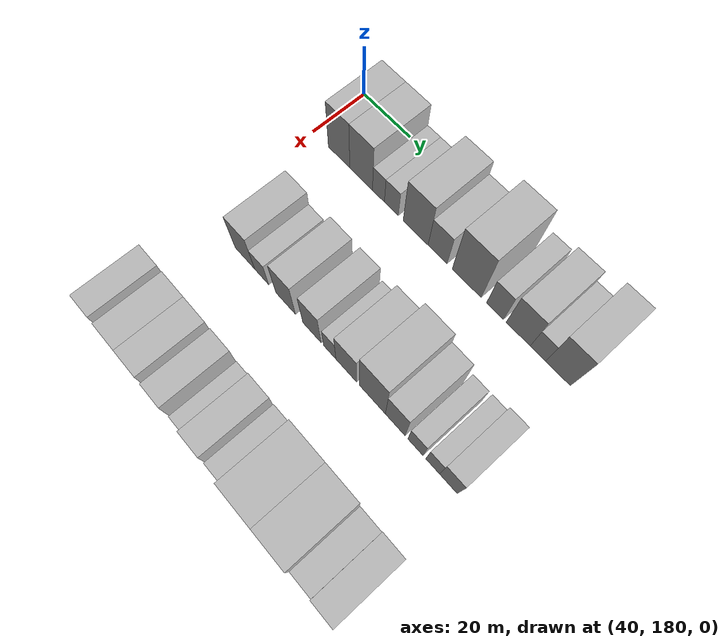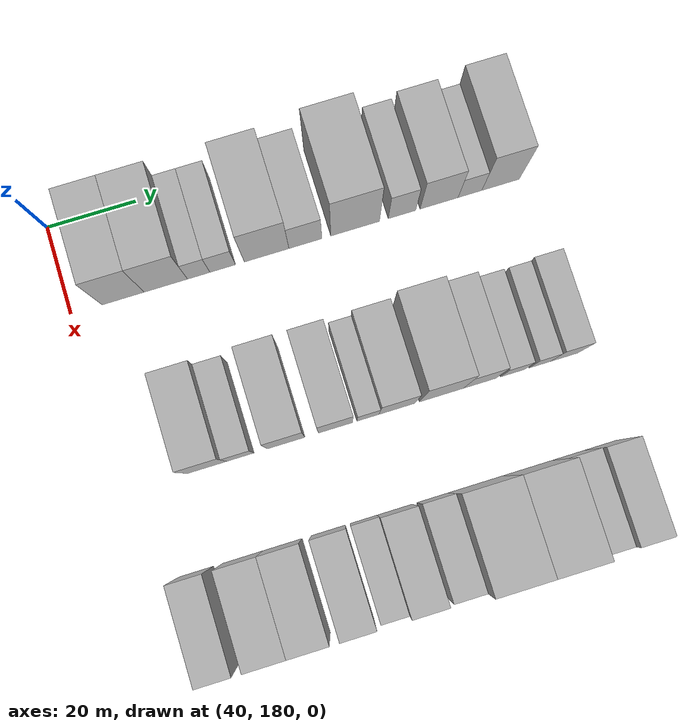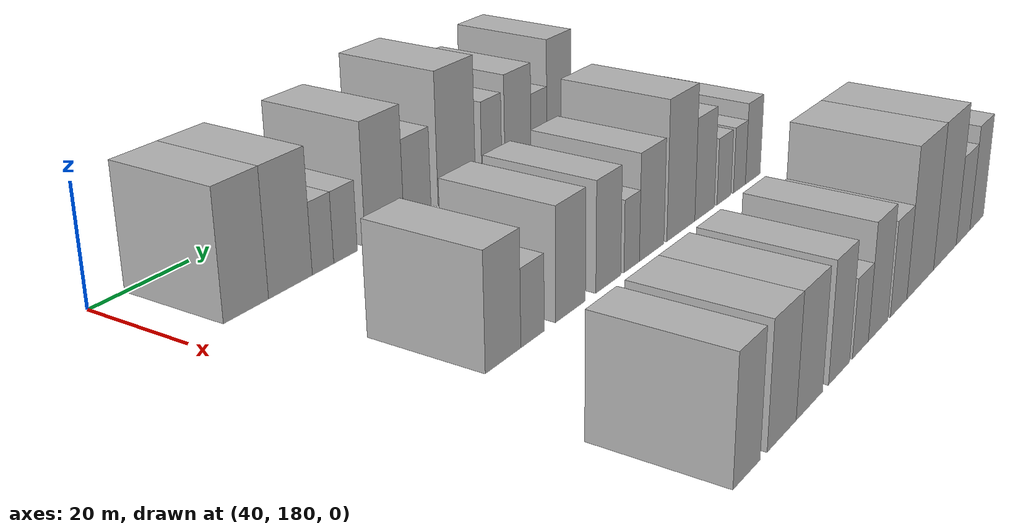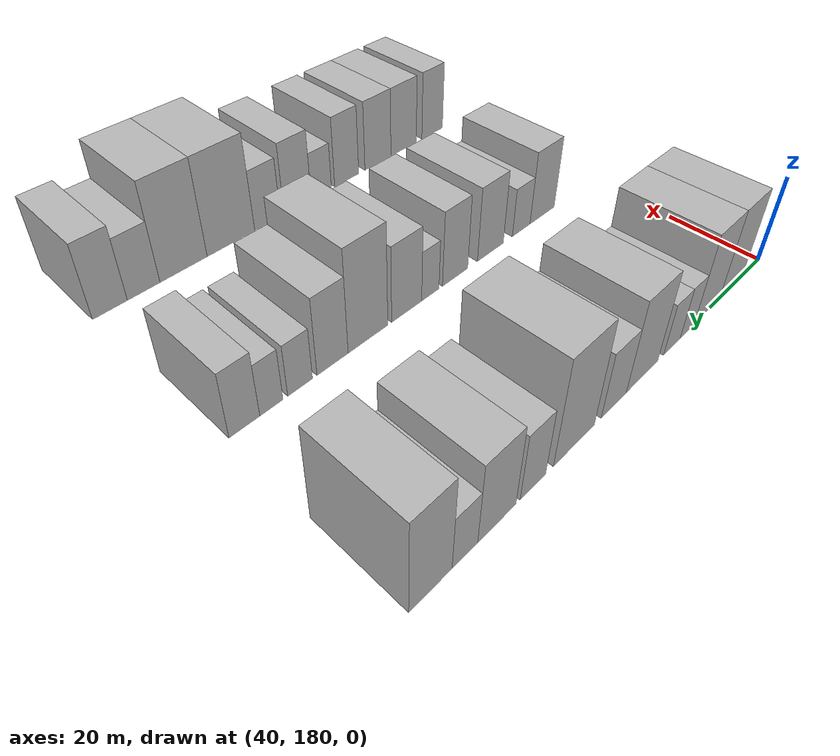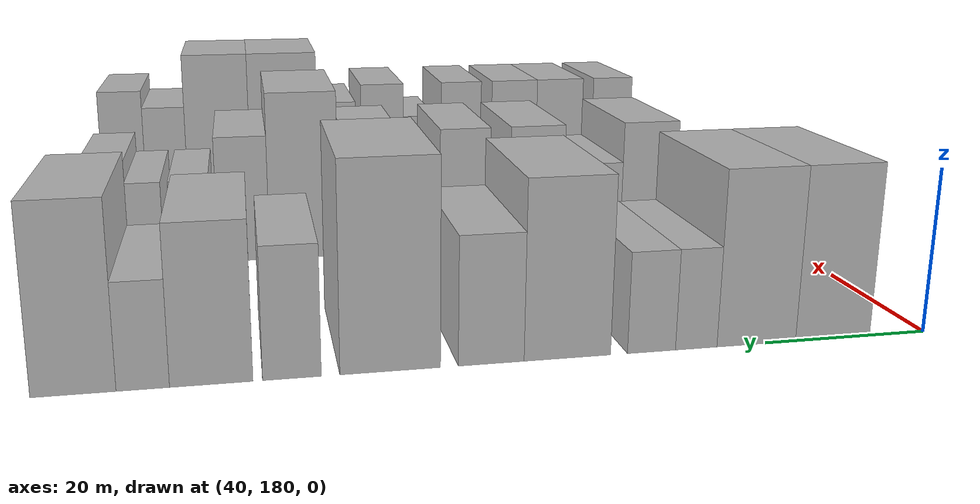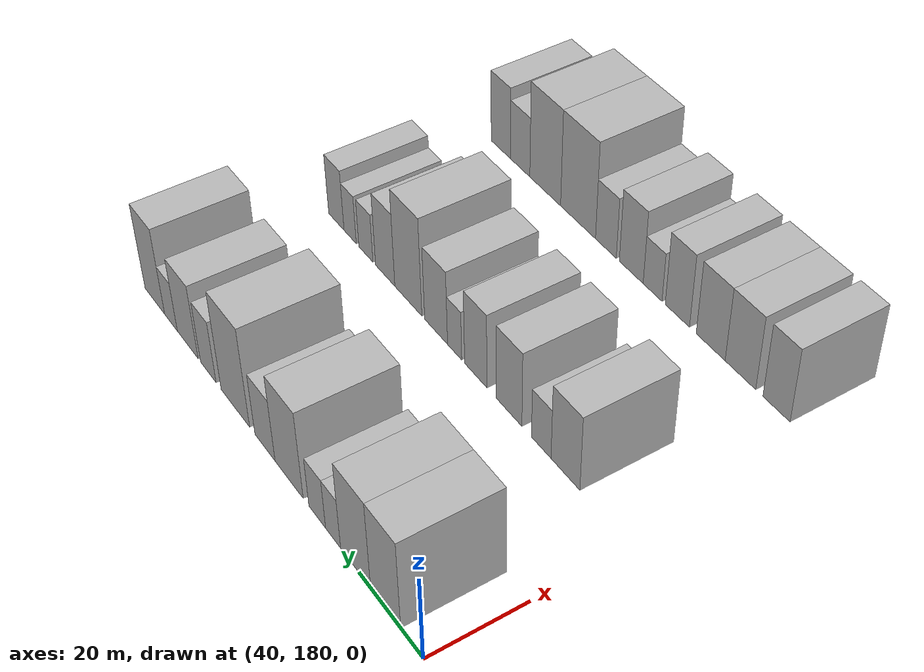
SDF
<sdf version="1.6">
 <world name="default">
  <model name="building_66">
   <static>1</static>
   <pose>50.0000 191.6155 0 0.000000 0.000000 0.000000</pose>
   <link name="link">
    <pose>0 0 10.50 0 0 0</pose>
    <collision name="collision"><geometry><box><size>20.0000 9.3782 21.0000</size></box></geometry></collision>
    <visual name="visual">
     <cast_shadows>0</cast_shadows>
     <geometry><box><size>20.0000 9.3782 21.0000</size></box></geometry>
     <material>
      <script>
       <uri>model://HANNAS_wall/materials/scripts</uri>
       <uri>model://HANNAS_wall/materials/textures</uri>
       <name>vrc/HANNAS_wall</name>
      </script>
     </material>
    </visual>
   </link>
  </model>
  <model name="building_67">
   <static>1</static>
   <pose>50.0000 201.1625 0 0.000000 0.000000 0.000000</pose>
   <link name="link">
    <pose>0 0 10.50 0 0 0</pose>
    <collision name="collision"><geometry><box><size>20.0000 9.7158 21.0000</size></box></geometry></collision>
    <visual name="visual">
     <cast_shadows>0</cast_shadows>
     <geometry><box><size>20.0000 9.7158 21.0000</size></box></geometry>
     <material>
      <script>
       <uri>model://HANNAS_wall/materials/scripts</uri>
       <uri>model://HANNAS_wall/materials/textures</uri>
       <name>vrc/HANNAS_wall</name>
      </script>
     </material>
    </visual>
   </link>
  </model>
  <model name="building_68">
   <static>1</static>
   <pose>50.0000 208.5325 0 0.000000 0.000000 0.000000</pose>
   <link name="link">
    <pose>0 0 6.00 0 0 0</pose>
    <collision name="collision"><geometry><box><size>20.0000 5.0242 12.0000</size></box></geometry></collision>
    <visual name="visual">
     <cast_shadows>0</cast_shadows>
     <geometry><box><size>20.0000 5.0242 12.0000</size></box></geometry>
     <material>
      <script>
       <uri>model://HANNAS_wall/materials/scripts</uri>
       <uri>model://HANNAS_wall/materials/textures</uri>
       <name>vrc/HANNAS_wall</name>
      </script>
     </material>
    </visual>
   </link>
  </model>
  <model name="building_69">
   <static>1</static>
   <pose>50.0000 213.9088 0 0.000000 0.000000 0.000000</pose>
   <link name="link">
    <pose>0 0 6.00 0 0 0</pose>
    <collision name="collision"><geometry><box><size>20.0000 5.7283 12.0000</size></box></geometry></collision>
    <visual name="visual">
     <cast_shadows>0</cast_shadows>
     <geometry><box><size>20.0000 5.7283 12.0000</size></box></geometry>
     <material>
      <script>
       <uri>model://HANNAS_wall/materials/scripts</uri>
       <uri>model://HANNAS_wall/materials/textures</uri>
       <name>vrc/HANNAS_wall</name>
      </script>
     </material>
    </visual>
   </link>
  </model>
  <model name="building_70">
   <static>1</static>
   <pose>50.0000 223.7912 0 0.000000 0.000000 0.000000</pose>
   <link name="link">
    <pose>0 0 10.50 0 0 0</pose>
    <collision name="collision"><geometry><box><size>20.0000 10.0367 21.0000</size></box></geometry></collision>
    <visual name="visual">
     <cast_shadows>0</cast_shadows>
     <geometry><box><size>20.0000 10.0367 21.0000</size></box></geometry>
     <material>
      <script>
       <uri>model://HANNAS_wall/materials/scripts</uri>
       <uri>model://HANNAS_wall/materials/textures</uri>
       <name>vrc/HANNAS_wall</name>
      </script>
     </material>
    </visual>
   </link>
  </model>
  <model name="building_71">
   <static>1</static>
   <pose>50.0000 232.5359 0 0.000000 0.000000 0.000000</pose>
   <link name="link">
    <pose>0 0 7.50 0 0 0</pose>
    <collision name="collision"><geometry><box><size>20.0000 7.4527 15.0000</size></box></geometry></collision>
    <visual name="visual">
     <cast_shadows>0</cast_shadows>
     <geometry><box><size>20.0000 7.4527 15.0000</size></box></geometry>
     <material>
      <script>
       <uri>model://HANNAS_wall/materials/scripts</uri>
       <uri>model://HANNAS_wall/materials/textures</uri>
       <name>vrc/HANNAS_wall</name>
      </script>
     </material>
    </visual>
   </link>
  </model>
  <model name="building_72">
   <static>1</static>
   <pose>50.0000 243.7809 0 0.000000 0.000000 0.000000</pose>
   <link name="link">
    <pose>0 0 12.00 0 0 0</pose>
    <collision name="collision"><geometry><box><size>20.0000 11.0372 24.0000</size></box></geometry></collision>
    <visual name="visual">
     <cast_shadows>0</cast_shadows>
     <geometry><box><size>20.0000 11.0372 24.0000</size></box></geometry>
     <material>
      <script>
       <uri>model://HANNAS_wall/materials/scripts</uri>
       <uri>model://HANNAS_wall/materials/textures</uri>
       <name>vrc/HANNAS_wall</name>
      </script>
     </material>
    </visual>
   </link>
  </model>
  <model name="building_73">
   <static>1</static>
   <pose>50.0000 254.4262 0 0.000000 0.000000 0.000000</pose>
   <link name="link">
    <pose>0 0 7.50 0 0 0</pose>
    <collision name="collision"><geometry><box><size>20.0000 6.2534 15.0000</size></box></geometry></collision>
    <visual name="visual">
     <cast_shadows>0</cast_shadows>
     <geometry><box><size>20.0000 6.2534 15.0000</size></box></geometry>
     <material>
      <script>
       <uri>model://HANNAS_wall/materials/scripts</uri>
       <uri>model://HANNAS_wall/materials/textures</uri>
       <name>vrc/HANNAS_wall</name>
      </script>
     </material>
    </visual>
   </link>
  </model>
  <model name="building_74">
   <static>1</static>
   <pose>50.0000 262.8880 0 0.000000 0.000000 0.000000</pose>
   <link name="link">
    <pose>0 0 9.00 0 0 0</pose>
    <collision name="collision"><geometry><box><size>20.0000 8.6704 18.0000</size></box></geometry></collision>
    <visual name="visual">
     <cast_shadows>0</cast_shadows>
     <geometry><box><size>20.0000 8.6704 18.0000</size></box></geometry>
     <material>
      <script>
       <uri>model://HANNAS_wall/materials/scripts</uri>
       <uri>model://HANNAS_wall/materials/textures</uri>
       <name>vrc/HANNAS_wall</name>
      </script>
     </material>
    </visual>
   </link>
  </model>
  <model name="building_75">
   <static>1</static>
   <pose>50.0000 269.9384 0 0.000000 0.000000 0.000000</pose>
   <link name="link">
    <pose>0 0 6.00 0 0 0</pose>
    <collision name="collision"><geometry><box><size>20.0000 5.4303 12.0000</size></box></geometry></collision>
    <visual name="visual">
     <cast_shadows>0</cast_shadows>
     <geometry><box><size>20.0000 5.4303 12.0000</size></box></geometry>
     <material>
      <script>
       <uri>model://HANNAS_wall/materials/scripts</uri>
       <uri>model://HANNAS_wall/materials/textures</uri>
       <name>vrc/HANNAS_wall</name>
      </script>
     </material>
    </visual>
   </link>
  </model>
  <model name="building_76">
   <static>1</static>
   <pose>50.0000 276.9479 0 0.000000 0.000000 0.000000</pose>
   <link name="link">
    <pose>0 0 10.50 0 0 0</pose>
    <collision name="collision"><geometry><box><size>20.0000 8.5889 21.0000</size></box></geometry></collision>
    <visual name="visual">
     <cast_shadows>0</cast_shadows>
     <geometry><box><size>20.0000 8.5889 21.0000</size></box></geometry>
     <material>
      <script>
       <uri>model://HANNAS_wall/materials/scripts</uri>
       <uri>model://HANNAS_wall/materials/textures</uri>
       <name>vrc/HANNAS_wall</name>
      </script>
     </material>
    </visual>
   </link>
  </model>
  <model name="building_153">
   <static>1</static>
   <pose>90.0000 198.7919 0 0.000000 0.000000 0.000000</pose>
   <link name="link">
    <pose>0 0 9.00 0 0 0</pose>
    <collision name="collision"><geometry><box><size>20.0000 8.6004 18.0000</size></box></geometry></collision>
    <visual name="visual">
     <cast_shadows>0</cast_shadows>
     <geometry><box><size>20.0000 8.6004 18.0000</size></box></geometry>
     <material>
      <script>
       <uri>model://HANNAS_wall/materials/scripts</uri>
       <uri>model://HANNAS_wall/materials/textures</uri>
       <name>vrc/HANNAS_wall</name>
      </script>
     </material>
    </visual>
   </link>
  </model>
  <model name="building_154">
   <static>1</static>
   <pose>90.0000 206.0868 0 0.000000 0.000000 0.000000</pose>
   <link name="link">
    <pose>0 0 6.00 0 0 0</pose>
    <collision name="collision"><geometry><box><size>20.0000 5.9893 12.0000</size></box></geometry></collision>
    <visual name="visual">
     <cast_shadows>0</cast_shadows>
     <geometry><box><size>20.0000 5.9893 12.0000</size></box></geometry>
     <material>
      <script>
       <uri>model://HANNAS_wall/materials/scripts</uri>
       <uri>model://HANNAS_wall/materials/textures</uri>
       <name>vrc/HANNAS_wall</name>
      </script>
     </material>
    </visual>
   </link>
  </model>
  <model name="building_155">
   <static>1</static>
   <pose>90.0000 216.1897 0 0.000000 0.000000 0.000000</pose>
   <link name="link">
    <pose>0 0 9.00 0 0 0</pose>
    <collision name="collision"><geometry><box><size>20.0000 8.2166 18.0000</size></box></geometry></collision>
    <visual name="visual">
     <cast_shadows>0</cast_shadows>
     <geometry><box><size>20.0000 8.2166 18.0000</size></box></geometry>
     <material>
      <script>
       <uri>model://HANNAS_wall/materials/scripts</uri>
       <uri>model://HANNAS_wall/materials/textures</uri>
       <name>vrc/HANNAS_wall</name>
      </script>
     </material>
    </visual>
   </link>
  </model>
  <model name="building_156">
   <static>1</static>
   <pose>90.0000 227.0205 0 0.000000 0.000000 0.000000</pose>
   <link name="link">
    <pose>0 0 9.00 0 0 0</pose>
    <collision name="collision"><geometry><box><size>20.0000 7.4451 18.0000</size></box></geometry></collision>
    <visual name="visual">
     <cast_shadows>0</cast_shadows>
     <geometry><box><size>20.0000 7.4451 18.0000</size></box></geometry>
     <material>
      <script>
       <uri>model://HANNAS_wall/materials/scripts</uri>
       <uri>model://HANNAS_wall/materials/textures</uri>
       <name>vrc/HANNAS_wall</name>
      </script>
     </material>
    </visual>
   </link>
  </model>
  <model name="building_157">
   <static>1</static>
   <pose>90.0000 234.1643 0 0.000000 0.000000 0.000000</pose>
   <link name="link">
    <pose>0 0 6.00 0 0 0</pose>
    <collision name="collision"><geometry><box><size>20.0000 4.8424 12.0000</size></box></geometry></collision>
    <visual name="visual">
     <cast_shadows>0</cast_shadows>
     <geometry><box><size>20.0000 4.8424 12.0000</size></box></geometry>
     <material>
      <script>
       <uri>model://HANNAS_wall/materials/scripts</uri>
       <uri>model://HANNAS_wall/materials/textures</uri>
       <name>vrc/HANNAS_wall</name>
      </script>
     </material>
    </visual>
   </link>
  </model>
  <model name="building_158">
   <static>1</static>
   <pose>90.0000 240.6040 0 0.000000 0.000000 0.000000</pose>
   <link name="link">
    <pose>0 0 9.00 0 0 0</pose>
    <collision name="collision"><geometry><box><size>20.0000 8.0371 18.0000</size></box></geometry></collision>
    <visual name="visual">
     <cast_shadows>0</cast_shadows>
     <geometry><box><size>20.0000 8.0371 18.0000</size></box></geometry>
     <material>
      <script>
       <uri>model://HANNAS_wall/materials/scripts</uri>
       <uri>model://HANNAS_wall/materials/textures</uri>
       <name>vrc/HANNAS_wall</name>
      </script>
     </material>
    </visual>
   </link>
  </model>
  <model name="building_159">
   <static>1</static>
   <pose>90.0000 250.5454 0 0.000000 0.000000 0.000000</pose>
   <link name="link">
    <pose>0 0 12.00 0 0 0</pose>
    <collision name="collision"><geometry><box><size>20.0000 9.8456 24.0000</size></box></geometry></collision>
    <visual name="visual">
     <cast_shadows>0</cast_shadows>
     <geometry><box><size>20.0000 9.8456 24.0000</size></box></geometry>
     <material>
      <script>
       <uri>model://HANNAS_wall/materials/scripts</uri>
       <uri>model://HANNAS_wall/materials/textures</uri>
       <name>vrc/HANNAS_wall</name>
      </script>
     </material>
    </visual>
   </link>
  </model>
  <model name="building_160">
   <static>1</static>
   <pose>90.0000 259.0888 0 0.000000 0.000000 0.000000</pose>
   <link name="link">
    <pose>0 0 9.00 0 0 0</pose>
    <collision name="collision"><geometry><box><size>20.0000 7.2412 18.0000</size></box></geometry></collision>
    <visual name="visual">
     <cast_shadows>0</cast_shadows>
     <geometry><box><size>20.0000 7.2412 18.0000</size></box></geometry>
     <material>
      <script>
       <uri>model://HANNAS_wall/materials/scripts</uri>
       <uri>model://HANNAS_wall/materials/textures</uri>
       <name>vrc/HANNAS_wall</name>
      </script>
     </material>
    </visual>
   </link>
  </model>
  <model name="building_161">
   <static>1</static>
   <pose>90.0000 266.4269 0 0.000000 0.000000 0.000000</pose>
   <link name="link">
    <pose>0 0 6.00 0 0 0</pose>
    <collision name="collision"><geometry><box><size>20.0000 5.4351 12.0000</size></box></geometry></collision>
    <visual name="visual">
     <cast_shadows>0</cast_shadows>
     <geometry><box><size>20.0000 5.4351 12.0000</size></box></geometry>
     <material>
      <script>
       <uri>model://HANNAS_wall/materials/scripts</uri>
       <uri>model://HANNAS_wall/materials/textures</uri>
       <name>vrc/HANNAS_wall</name>
      </script>
     </material>
    </visual>
   </link>
  </model>
  <model name="building_162">
   <static>1</static>
   <pose>90.0000 272.5635 0 0.000000 0.000000 0.000000</pose>
   <link name="link">
    <pose>0 0 6.00 0 0 0</pose>
    <collision name="collision"><geometry><box><size>20.0000 4.8381 12.0000</size></box></geometry></collision>
    <visual name="visual">
     <cast_shadows>0</cast_shadows>
     <geometry><box><size>20.0000 4.8381 12.0000</size></box></geometry>
     <material>
      <script>
       <uri>model://HANNAS_wall/materials/scripts</uri>
       <uri>model://HANNAS_wall/materials/textures</uri>
       <name>vrc/HANNAS_wall</name>
      </script>
     </material>
    </visual>
   </link>
  </model>
  <model name="building_163">
   <static>1</static>
   <pose>90.0000 278.0547 0 0.000000 0.000000 0.000000</pose>
   <link name="link">
    <pose>0 0 7.50 0 0 0</pose>
    <collision name="collision"><geometry><box><size>20.0000 6.1442 15.0000</size></box></geometry></collision>
    <visual name="visual">
     <cast_shadows>0</cast_shadows>
     <geometry><box><size>20.0000 6.1442 15.0000</size></box></geometry>
     <material>
      <script>
       <uri>model://HANNAS_wall/materials/scripts</uri>
       <uri>model://HANNAS_wall/materials/textures</uri>
       <name>vrc/HANNAS_wall</name>
      </script>
     </material>
    </visual>
   </link>
  </model>
  <model name="building_240">
   <static>1</static>
   <pose>130.0000 190.6306 0 0.000000 0.000000 0.000000</pose>
   <link name="link">
    <pose>0 0 9.00 0 0 0</pose>
    <collision name="collision"><geometry><box><size>20.0000 7.4482 18.0000</size></box></geometry></collision>
    <visual name="visual">
     <cast_shadows>0</cast_shadows>
     <geometry><box><size>20.0000 7.4482 18.0000</size></box></geometry>
     <material>
      <script>
       <uri>model://HANNAS_wall/materials/scripts</uri>
       <uri>model://HANNAS_wall/materials/textures</uri>
       <name>vrc/HANNAS_wall</name>
      </script>
     </material>
    </visual>
   </link>
  </model>
  <model name="building_241">
   <static>1</static>
   <pose>130.0000 200.7178 0 0.000000 0.000000 0.000000</pose>
   <link name="link">
    <pose>0 0 9.00 0 0 0</pose>
    <collision name="collision"><geometry><box><size>20.0000 8.7261 18.0000</size></box></geometry></collision>
    <visual name="visual">
     <cast_shadows>0</cast_shadows>
     <geometry><box><size>20.0000 8.7261 18.0000</size></box></geometry>
     <material>
      <script>
       <uri>model://HANNAS_wall/materials/scripts</uri>
       <uri>model://HANNAS_wall/materials/textures</uri>
       <name>vrc/HANNAS_wall</name>
      </script>
     </material>
    </visual>
   </link>
  </model>
  <model name="building_242">
   <static>1</static>
   <pose>130.0000 209.3386 0 0.000000 0.000000 0.000000</pose>
   <link name="link">
    <pose>0 0 9.00 0 0 0</pose>
    <collision name="collision"><geometry><box><size>20.0000 8.5156 18.0000</size></box></geometry></collision>
    <visual name="visual">
     <cast_shadows>0</cast_shadows>
     <geometry><box><size>20.0000 8.5156 18.0000</size></box></geometry>
     <material>
      <script>
       <uri>model://HANNAS_wall/materials/scripts</uri>
       <uri>model://HANNAS_wall/materials/textures</uri>
       <name>vrc/HANNAS_wall</name>
      </script>
     </material>
    </visual>
   </link>
  </model>
  <model name="building_243">
   <static>1</static>
   <pose>130.0000 219.3049 0 0.000000 0.000000 0.000000</pose>
   <link name="link">
    <pose>0 0 9.00 0 0 0</pose>
    <collision name="collision"><geometry><box><size>20.0000 7.4170 18.0000</size></box></geometry></collision>
    <visual name="visual">
     <cast_shadows>0</cast_shadows>
     <geometry><box><size>20.0000 7.4170 18.0000</size></box></geometry>
     <material>
      <script>
       <uri>model://HANNAS_wall/materials/scripts</uri>
       <uri>model://HANNAS_wall/materials/textures</uri>
       <name>vrc/HANNAS_wall</name>
      </script>
     </material>
    </visual>
   </link>
  </model>
  <model name="building_244">
   <static>1</static>
   <pose>130.0000 226.9748 0 0.000000 0.000000 0.000000</pose>
   <link name="link">
    <pose>0 0 6.00 0 0 0</pose>
    <collision name="collision"><geometry><box><size>20.0000 5.9228 12.0000</size></box></geometry></collision>
    <visual name="visual">
     <cast_shadows>0</cast_shadows>
     <geometry><box><size>20.0000 5.9228 12.0000</size></box></geometry>
     <material>
      <script>
       <uri>model://HANNAS_wall/materials/scripts</uri>
       <uri>model://HANNAS_wall/materials/textures</uri>
       <name>vrc/HANNAS_wall</name>
      </script>
     </material>
    </visual>
   </link>
  </model>
  <model name="building_245">
   <static>1</static>
   <pose>130.0000 233.7835 0 0.000000 0.000000 0.000000</pose>
   <link name="link">
    <pose>0 0 9.00 0 0 0</pose>
    <collision name="collision"><geometry><box><size>20.0000 7.6945 18.0000</size></box></geometry></collision>
    <visual name="visual">
     <cast_shadows>0</cast_shadows>
     <geometry><box><size>20.0000 7.6945 18.0000</size></box></geometry>
     <material>
      <script>
       <uri>model://HANNAS_wall/materials/scripts</uri>
       <uri>model://HANNAS_wall/materials/textures</uri>
       <name>vrc/HANNAS_wall</name>
      </script>
     </material>
    </visual>
   </link>
  </model>
  <model name="building_246">
   <static>1</static>
   <pose>130.0000 242.0843 0 0.000000 0.000000 0.000000</pose>
   <link name="link">
    <pose>0 0 7.50 0 0 0</pose>
    <collision name="collision"><geometry><box><size>20.0000 6.9072 15.0000</size></box></geometry></collision>
    <visual name="visual">
     <cast_shadows>0</cast_shadows>
     <geometry><box><size>20.0000 6.9072 15.0000</size></box></geometry>
     <material>
      <script>
       <uri>model://HANNAS_wall/materials/scripts</uri>
       <uri>model://HANNAS_wall/materials/textures</uri>
       <name>vrc/HANNAS_wall</name>
      </script>
     </material>
    </visual>
   </link>
  </model>
  <model name="building_247">
   <static>1</static>
   <pose>130.0000 251.5273 0 0.000000 0.000000 0.000000</pose>
   <link name="link">
    <pose>0 0 12.00 0 0 0</pose>
    <collision name="collision"><geometry><box><size>20.0000 11.9788 24.0000</size></box></geometry></collision>
    <visual name="visual">
     <cast_shadows>0</cast_shadows>
     <geometry><box><size>20.0000 11.9788 24.0000</size></box></geometry>
     <material>
      <script>
       <uri>model://HANNAS_wall/materials/scripts</uri>
       <uri>model://HANNAS_wall/materials/textures</uri>
       <name>vrc/HANNAS_wall</name>
      </script>
     </material>
    </visual>
   </link>
  </model>
  <model name="building_248">
   <static>1</static>
   <pose>130.0000 263.0190 0 0.000000 0.000000 0.000000</pose>
   <link name="link">
    <pose>0 0 12.00 0 0 0</pose>
    <collision name="collision"><geometry><box><size>20.0000 11.0045 24.0000</size></box></geometry></collision>
    <visual name="visual">
     <cast_shadows>0</cast_shadows>
     <geometry><box><size>20.0000 11.0045 24.0000</size></box></geometry>
     <material>
      <script>
       <uri>model://HANNAS_wall/materials/scripts</uri>
       <uri>model://HANNAS_wall/materials/textures</uri>
       <name>vrc/HANNAS_wall</name>
      </script>
     </material>
    </visual>
   </link>
  </model>
  <model name="building_249">
   <static>1</static>
   <pose>130.0000 272.0866 0 0.000000 0.000000 0.000000</pose>
   <link name="link">
    <pose>0 0 7.50 0 0 0</pose>
    <collision name="collision"><geometry><box><size>20.0000 7.1306 15.0000</size></box></geometry></collision>
    <visual name="visual">
     <cast_shadows>0</cast_shadows>
     <geometry><box><size>20.0000 7.1306 15.0000</size></box></geometry>
     <material>
      <script>
       <uri>model://HANNAS_wall/materials/scripts</uri>
       <uri>model://HANNAS_wall/materials/textures</uri>
       <name>vrc/HANNAS_wall</name>
      </script>
     </material>
    </visual>
   </link>
  </model>
  <model name="building_250">
   <static>1</static>
   <pose>130.0000 279.2814 0 0.000000 0.000000 0.000000</pose>
   <link name="link">
    <pose>0 0 9.00 0 0 0</pose>
    <collision name="collision"><geometry><box><size>20.0000 7.2591 18.0000</size></box></geometry></collision>
    <visual name="visual">
     <cast_shadows>0</cast_shadows>
     <geometry><box><size>20.0000 7.2591 18.0000</size></box></geometry>
     <material>
      <script>
       <uri>model://HANNAS_wall/materials/scripts</uri>
       <uri>model://HANNAS_wall/materials/textures</uri>
       <name>vrc/HANNAS_wall</name>
      </script>
     </material>
    </visual>
   </link>
  </model>
 </world>
</sdf>
